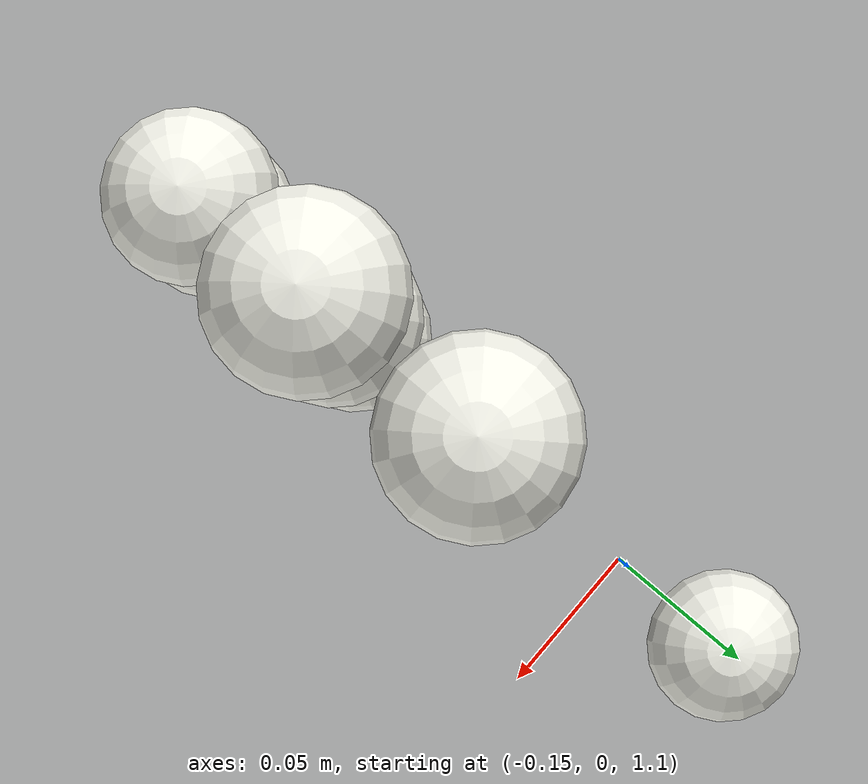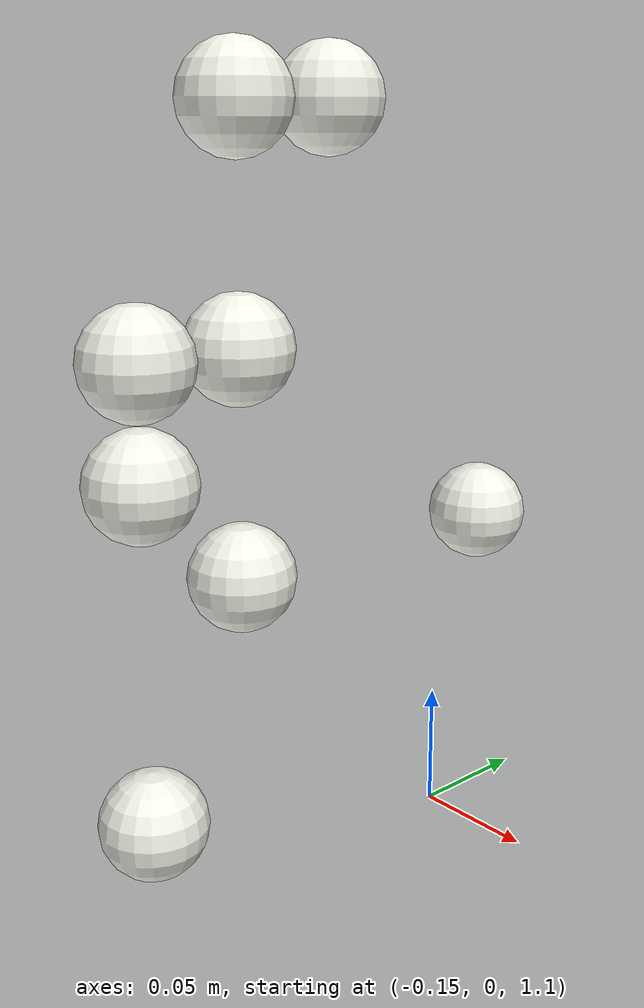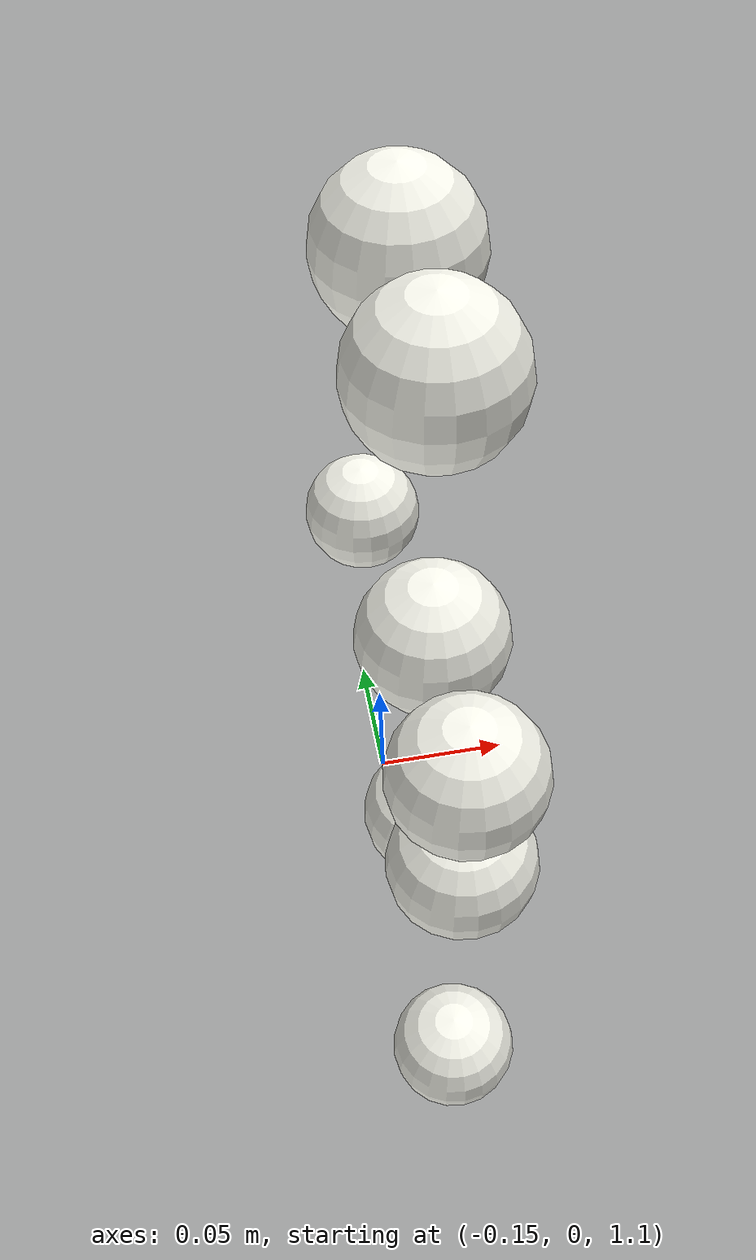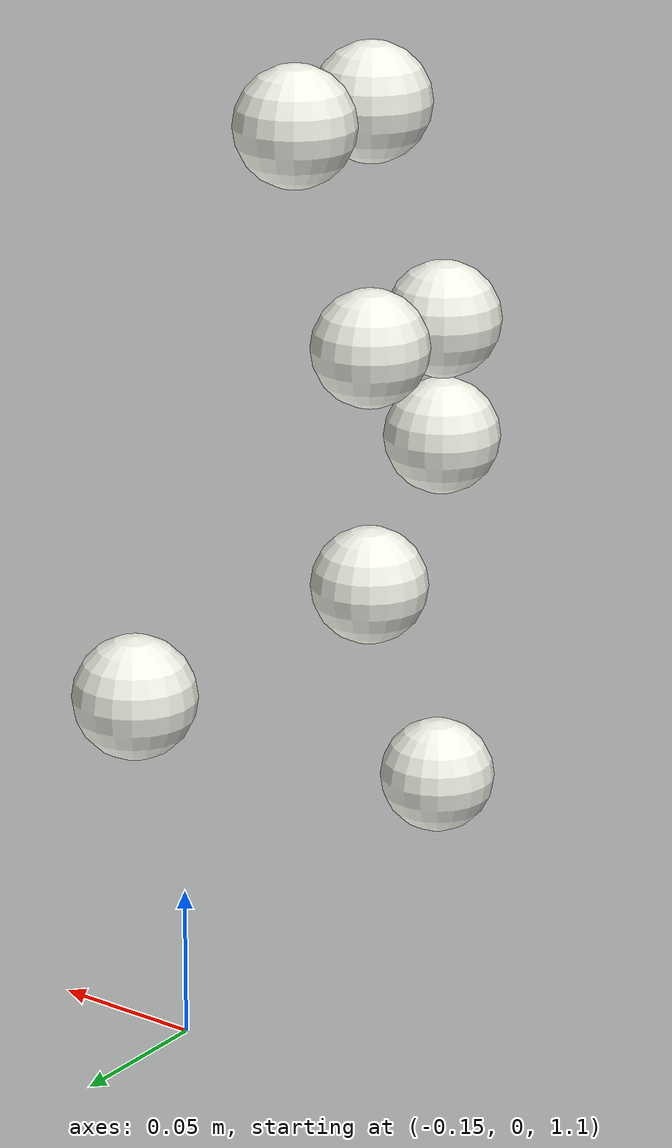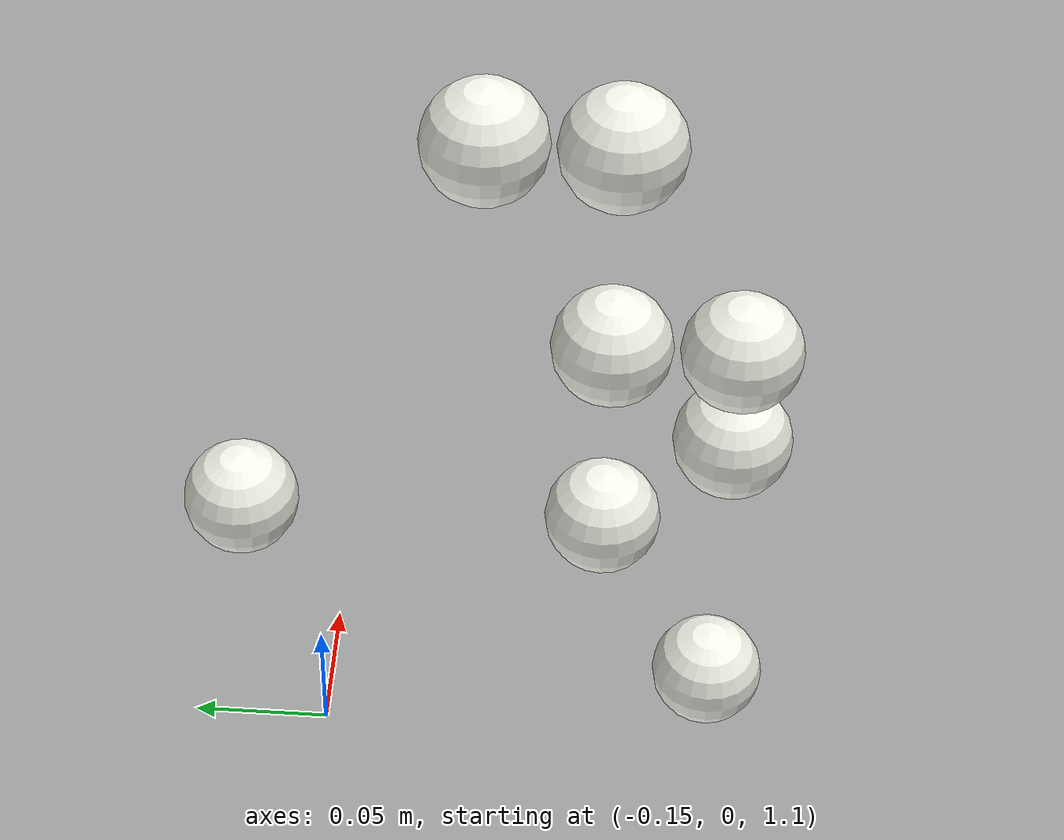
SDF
<sdf version="1.8">
 <world name="physical_100_dt5ms_diagnostic">
  <model name="ground">
   <static>true</static>
   <link name="ground_link">
    <collision name="floor">
     <geometry><plane><normal>0 0 1</normal><size>20 20</size></plane></geometry>
    </collision>
    <visual name="floor_visual">
     <geometry><plane><normal>0 0 1</normal><size>20 20</size></plane></geometry>
     <material><ambient>0.65 0.67 0.7 1</ambient><diffuse>0.65 0.67 0.7 1</diffuse></material>
    </visual>
   </link>
  </model>
  <model name="inventory_ball_003">
   <static>false</static>
   <pose>-0.15016469225937706 -0.14224783670042238 1.1431531530918113 0 0 0</pose>
   <link name="ball_link">
    <inertial>
     <mass>0.0027000000000000001</mass>
     <inertia>
      <ixx>7.1999999999999999e-07</ixx>
      <iyy>7.1999999999999999e-07</iyy>
      <izz>7.1999999999999999e-07</izz>
      <ixy>0</ixy>
      <ixz>0</ixz>
      <iyz>0</iyz>
     </inertia>
    </inertial>
    <collision name="ball_collision">
     <geometry><sphere><radius>0.02</radius></sphere></geometry>
     <surface>
      <friction><ode><mu>0.3</mu><mu2>0.3</mu2></ode></friction>
      <bounce><restitution_coefficient>0.8</restitution_coefficient><threshold>0.01</threshold></bounce>
     </surface>
    </collision>
    <visual name="ball_visual">
     <geometry><sphere><radius>0.02</radius></sphere></geometry>
     <material><ambient>0.96 0.96 0.92 1</ambient><diffuse>0.96 0.96 0.92 1</diffuse></material>
    </visual>
   </link>
  </model>
  <model name="inventory_ball_036">
   <static>false</static>
   <pose>-0.15031542292085209 -0.10063306869584249 1.2263608591504016 0 0 0</pose>
   <link name="ball_link">
    <inertial>
     <mass>0.0027000000000000001</mass>
     <inertia>
      <ixx>7.1999999999999999e-07</ixx>
      <iyy>7.1999999999999999e-07</iyy>
      <izz>7.1999999999999999e-07</izz>
      <ixy>0</ixy>
      <ixz>0</ixz>
      <iyz>0</iyz>
     </inertia>
    </inertial>
    <collision name="ball_collision">
     <geometry><sphere><radius>0.02</radius></sphere></geometry>
     <surface>
      <friction><ode><mu>0.3</mu><mu2>0.3</mu2></ode></friction>
      <bounce><restitution_coefficient>0.8</restitution_coefficient><threshold>0.01</threshold></bounce>
     </surface>
    </collision>
    <visual name="ball_visual">
     <geometry><sphere><radius>0.02</radius></sphere></geometry>
     <material><ambient>0.96 0.96 0.92 1</ambient><diffuse>0.96 0.96 0.92 1</diffuse></material>
    </visual>
   </link>
  </model>
  <model name="inventory_ball_045">
   <static>false</static>
   <pose>-0.15017319424047756 0.024668169667178802 1.2261513920712408 0 0 0</pose>
   <link name="ball_link">
    <inertial>
     <mass>0.0027000000000000001</mass>
     <inertia>
      <ixx>7.1999999999999999e-07</ixx>
      <iyy>7.1999999999999999e-07</iyy>
      <izz>7.1999999999999999e-07</izz>
      <ixy>0</ixy>
      <ixz>0</ixz>
      <iyz>0</iyz>
     </inertia>
    </inertial>
    <collision name="ball_collision">
     <geometry><sphere><radius>0.02</radius></sphere></geometry>
     <surface>
      <friction><ode><mu>0.3</mu><mu2>0.3</mu2></ode></friction>
      <bounce><restitution_coefficient>0.8</restitution_coefficient><threshold>0.01</threshold></bounce>
     </surface>
    </collision>
    <visual name="ball_visual">
     <geometry><sphere><radius>0.02</radius></sphere></geometry>
     <material><ambient>0.96 0.96 0.92 1</ambient><diffuse>0.96 0.96 0.92 1</diffuse></material>
    </visual>
   </link>
  </model>
  <model name="inventory_ball_048">
   <static>false</static>
   <pose>-0.150370117843903 -0.14214096602263598 1.2682234598246513 0 0 0</pose>
   <link name="ball_link">
    <inertial>
     <mass>0.0027000000000000001</mass>
     <inertia>
      <ixx>7.1999999999999999e-07</ixx>
      <iyy>7.1999999999999999e-07</iyy>
      <izz>7.1999999999999999e-07</izz>
      <ixy>0</ixy>
      <ixz>0</ixz>
      <iyz>0</iyz>
     </inertia>
    </inertial>
    <collision name="ball_collision">
     <geometry><sphere><radius>0.02</radius></sphere></geometry>
     <surface>
      <friction><ode><mu>0.3</mu><mu2>0.3</mu2></ode></friction>
      <bounce><restitution_coefficient>0.8</restitution_coefficient><threshold>0.01</threshold></bounce>
     </surface>
    </collision>
    <visual name="ball_visual">
     <geometry><sphere><radius>0.02</radius></sphere></geometry>
     <material><ambient>0.96 0.96 0.92 1</ambient><diffuse>0.96 0.96 0.92 1</diffuse></material>
    </visual>
   </link>
  </model>
  <model name="inventory_ball_063">
   <static>false</static>
   <pose>-0.15018299647818831 -0.14215080619964784 1.3094141253450648 0 0 0</pose>
   <link name="ball_link">
    <inertial>
     <mass>0.0027000000000000001</mass>
     <inertia>
      <ixx>7.1999999999999999e-07</ixx>
      <iyy>7.1999999999999999e-07</iyy>
      <izz>7.1999999999999999e-07</izz>
      <ixy>0</ixy>
      <ixz>0</ixz>
      <iyz>0</iyz>
     </inertia>
    </inertial>
    <collision name="ball_collision">
     <geometry><sphere><radius>0.02</radius></sphere></geometry>
     <surface>
      <friction><ode><mu>0.3</mu><mu2>0.3</mu2></ode></friction>
      <bounce><restitution_coefficient>0.8</restitution_coefficient><threshold>0.01</threshold></bounce>
     </surface>
    </collision>
    <visual name="ball_visual">
     <geometry><sphere><radius>0.02</radius></sphere></geometry>
     <material><ambient>0.96 0.96 0.92 1</ambient><diffuse>0.96 0.96 0.92 1</diffuse></material>
    </visual>
   </link>
  </model>
  <model name="inventory_ball_066">
   <static>false</static>
   <pose>-0.15018319053714288 -0.10036980481253011 1.3093303529977152 0 0 0</pose>
   <link name="ball_link">
    <inertial>
     <mass>0.0027000000000000001</mass>
     <inertia>
      <ixx>7.1999999999999999e-07</ixx>
      <iyy>7.1999999999999999e-07</iyy>
      <izz>7.1999999999999999e-07</izz>
      <ixy>0</ixy>
      <ixz>0</ixz>
      <iyz>0</iyz>
     </inertia>
    </inertial>
    <collision name="ball_collision">
     <geometry><sphere><radius>0.02</radius></sphere></geometry>
     <surface>
      <friction><ode><mu>0.3</mu><mu2>0.3</mu2></ode></friction>
      <bounce><restitution_coefficient>0.8</restitution_coefficient><threshold>0.01</threshold></bounce>
     </surface>
    </collision>
    <visual name="ball_visual">
     <geometry><sphere><radius>0.02</radius></sphere></geometry>
     <material><ambient>0.96 0.96 0.92 1</ambient><diffuse>0.96 0.96 0.92 1</diffuse></material>
    </visual>
   </link>
  </model>
  <model name="inventory_ball_096">
   <static>false</static>
   <pose>-0.15015679810535237 -0.1001923377720231 1.392555379080628 0 0 0</pose>
   <link name="ball_link">
    <inertial>
     <mass>0.0027000000000000001</mass>
     <inertia>
      <ixx>7.1999999999999999e-07</ixx>
      <iyy>7.1999999999999999e-07</iyy>
      <izz>7.1999999999999999e-07</izz>
      <ixy>0</ixy>
      <ixz>0</ixz>
      <iyz>0</iyz>
     </inertia>
    </inertial>
    <collision name="ball_collision">
     <geometry><sphere><radius>0.02</radius></sphere></geometry>
     <surface>
      <friction><ode><mu>0.3</mu><mu2>0.3</mu2></ode></friction>
      <bounce><restitution_coefficient>0.8</restitution_coefficient><threshold>0.01</threshold></bounce>
     </surface>
    </collision>
    <visual name="ball_visual">
     <geometry><sphere><radius>0.02</radius></sphere></geometry>
     <material><ambient>0.96 0.96 0.92 1</ambient><diffuse>0.96 0.96 0.92 1</diffuse></material>
    </visual>
   </link>
  </model>
  <model name="inventory_ball_099">
   <static>false</static>
   <pose>-0.15025526145499121 -0.058768991747324167 1.3927566121513886 0 0 0</pose>
   <link name="ball_link">
    <inertial>
     <mass>0.0027000000000000001</mass>
     <inertia>
      <ixx>7.1999999999999999e-07</ixx>
      <iyy>7.1999999999999999e-07</iyy>
      <izz>7.1999999999999999e-07</izz>
      <ixy>0</ixy>
      <ixz>0</ixz>
      <iyz>0</iyz>
     </inertia>
    </inertial>
    <collision name="ball_collision">
     <geometry><sphere><radius>0.02</radius></sphere></geometry>
     <surface>
      <friction><ode><mu>0.3</mu><mu2>0.3</mu2></ode></friction>
      <bounce><restitution_coefficient>0.8</restitution_coefficient><threshold>0.01</threshold></bounce>
     </surface>
    </collision>
    <visual name="ball_visual">
     <geometry><sphere><radius>0.02</radius></sphere></geometry>
     <material><ambient>0.96 0.96 0.92 1</ambient><diffuse>0.96 0.96 0.92 1</diffuse></material>
    </visual>
   </link>
  </model>
 </world>
</sdf>
